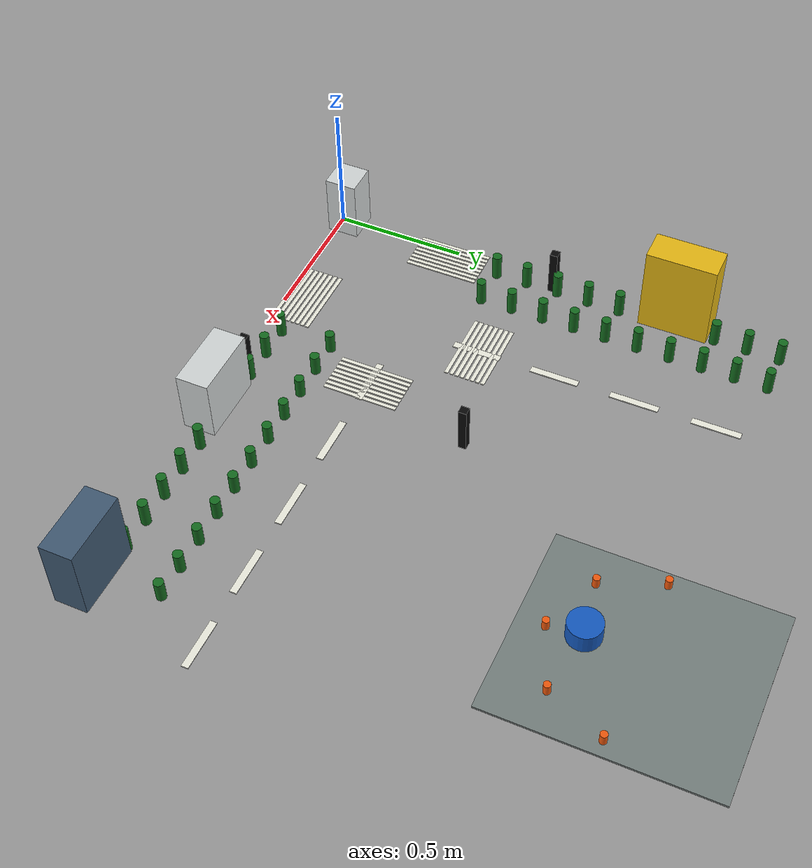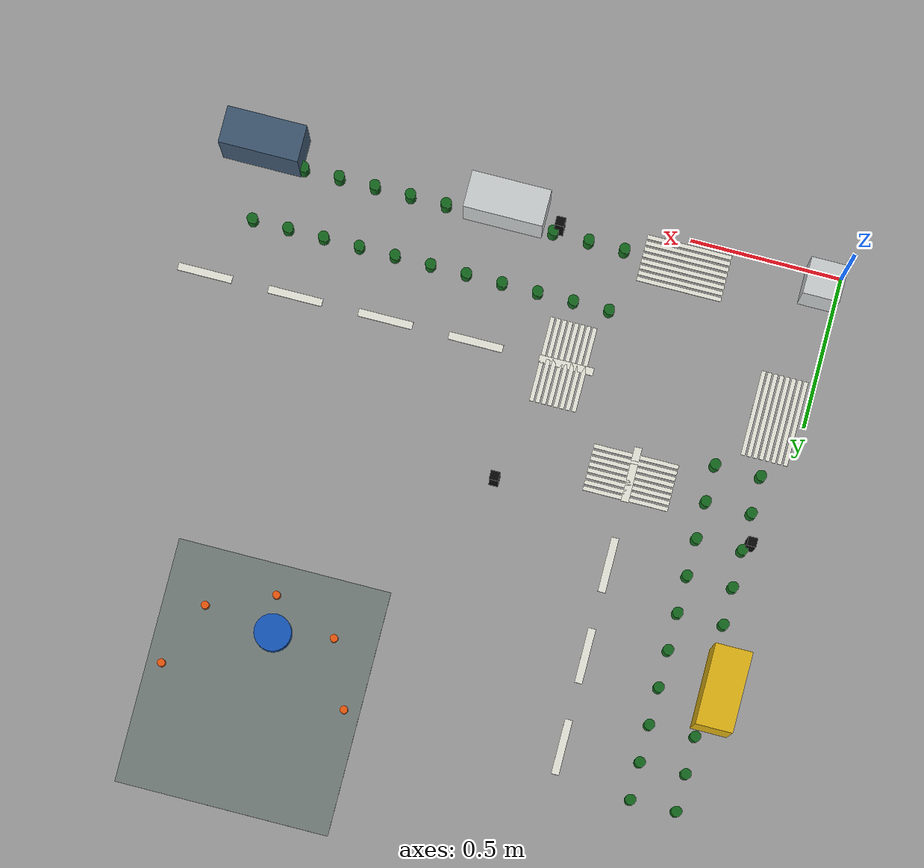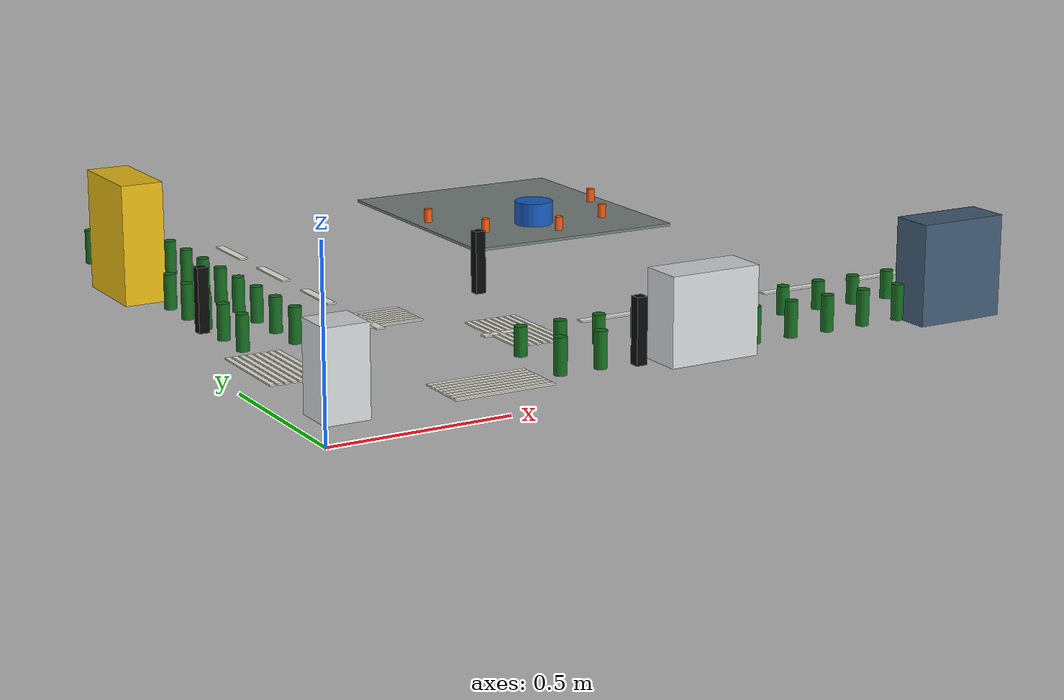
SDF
<sdf version="1.7">
 <world name="nexus_sandbox_imx219">
  <model name="LM-RING-W-01">
   <static>true</static>
   <pose>0.5 0.79 0.05450000000000001 0 0 0</pose>
   <link name="link">
    <collision name="collision"><geometry><box><size>0.025 0.18 0.004</size></box></geometry></collision>
    <visual name="visual">
     <geometry><box><size>0.025 0.18 0.004</size></box></geometry>
     <material><ambient>0.93 0.93 0.88 1</ambient><diffuse>0.93 0.93 0.88 1</diffuse></material>
    </visual>
   </link>
  </model>
  <model name="LM-RING-W-02">
   <static>true</static>
   <pose>0.5 1.09 0.05450000000000001 0 0 0</pose>
   <link name="link">
    <collision name="collision"><geometry><box><size>0.025 0.18 0.004</size></box></geometry></collision>
    <visual name="visual">
     <geometry><box><size>0.025 0.18 0.004</size></box></geometry>
     <material><ambient>0.93 0.93 0.88 1</ambient><diffuse>0.93 0.93 0.88 1</diffuse></material>
    </visual>
   </link>
  </model>
  <model name="LM-RING-W-03">
   <static>true</static>
   <pose>0.5 1.3900000000000001 0.05450000000000001 0 0 0</pose>
   <link name="link">
    <collision name="collision"><geometry><box><size>0.025 0.18 0.004</size></box></geometry></collision>
    <visual name="visual">
     <geometry><box><size>0.025 0.18 0.004</size></box></geometry>
     <material><ambient>0.93 0.93 0.88 1</ambient><diffuse>0.93 0.93 0.88 1</diffuse></material>
    </visual>
   </link>
  </model>
  <model name="LM-RING-W-04">
   <static>true</static>
   <pose>0.5 1.69 0.05450000000000001 0 0 0</pose>
   <link name="link">
    <collision name="collision"><geometry><box><size>0.025 0.18 0.004</size></box></geometry></collision>
    <visual name="visual">
     <geometry><box><size>0.025 0.18 0.004</size></box></geometry>
     <material><ambient>0.93 0.93 0.88 1</ambient><diffuse>0.93 0.93 0.88 1</diffuse></material>
    </visual>
   </link>
  </model>
  <model name="LM-RING-S-01">
   <static>true</static>
   <pose>0.79 0.5 0.05450000000000001 0 0 0</pose>
   <link name="link">
    <collision name="collision"><geometry><box><size>0.18 0.025 0.004</size></box></geometry></collision>
    <visual name="visual">
     <geometry><box><size>0.18 0.025 0.004</size></box></geometry>
     <material><ambient>0.93 0.93 0.88 1</ambient><diffuse>0.93 0.93 0.88 1</diffuse></material>
    </visual>
   </link>
  </model>
  <model name="LM-RING-S-02">
   <static>true</static>
   <pose>1.09 0.5 0.05450000000000001 0 0 0</pose>
   <link name="link">
    <collision name="collision"><geometry><box><size>0.18 0.025 0.004</size></box></geometry></collision>
    <visual name="visual">
     <geometry><box><size>0.18 0.025 0.004</size></box></geometry>
     <material><ambient>0.93 0.93 0.88 1</ambient><diffuse>0.93 0.93 0.88 1</diffuse></material>
    </visual>
   </link>
  </model>
  <model name="LM-RING-S-03">
   <static>true</static>
   <pose>1.3900000000000001 0.5 0.05450000000000001 0 0 0</pose>
   <link name="link">
    <collision name="collision"><geometry><box><size>0.18 0.025 0.004</size></box></geometry></collision>
    <visual name="visual">
     <geometry><box><size>0.18 0.025 0.004</size></box></geometry>
     <material><ambient>0.93 0.93 0.88 1</ambient><diffuse>0.93 0.93 0.88 1</diffuse></material>
    </visual>
   </link>
  </model>
  <model name="LM-RING-S-04">
   <static>true</static>
   <pose>1.69 0.5 0.05450000000000001 0 0 0</pose>
   <link name="link">
    <collision name="collision"><geometry><box><size>0.18 0.025 0.004</size></box></geometry></collision>
    <visual name="visual">
     <geometry><box><size>0.18 0.025 0.004</size></box></geometry>
     <material><ambient>0.93 0.93 0.88 1</ambient><diffuse>0.93 0.93 0.88 1</diffuse></material>
    </visual>
   </link>
  </model>
  <model name="LM-RING-S-05">
   <static>true</static>
   <pose>1.9900000000000002 0.5 0.05450000000000001 0 0 0</pose>
   <link name="link">
    <collision name="collision"><geometry><box><size>0.18 0.025 0.004</size></box></geometry></collision>
    <visual name="visual">
     <geometry><box><size>0.18 0.025 0.004</size></box></geometry>
     <material><ambient>0.93 0.93 0.88 1</ambient><diffuse>0.93 0.93 0.88 1</diffuse></material>
    </visual>
   </link>
  </model>
  <model name="CW-SW-X-01">
   <static>true</static>
   <pose>0.5 0.73 0.05450000000000001 0 0 0</pose>
   <link name="link">
    <collision name="collision"><geometry><box><size>0.28 0.014 0.004</size></box></geometry></collision>
    <visual name="visual">
     <geometry><box><size>0.28 0.014 0.004</size></box></geometry>
     <material><ambient>0.93 0.93 0.88 1</ambient><diffuse>0.93 0.93 0.88 1</diffuse></material>
    </visual>
   </link>
  </model>
  <model name="CW-SW-X-02">
   <static>true</static>
   <pose>0.5 0.75 0.05450000000000001 0 0 0</pose>
   <link name="link">
    <collision name="collision"><geometry><box><size>0.28 0.014 0.004</size></box></geometry></collision>
    <visual name="visual">
     <geometry><box><size>0.28 0.014 0.004</size></box></geometry>
     <material><ambient>0.93 0.93 0.88 1</ambient><diffuse>0.93 0.93 0.88 1</diffuse></material>
    </visual>
   </link>
  </model>
  <model name="CW-SW-X-03">
   <static>true</static>
   <pose>0.5 0.77 0.05450000000000001 0 0 0</pose>
   <link name="link">
    <collision name="collision"><geometry><box><size>0.28 0.014 0.004</size></box></geometry></collision>
    <visual name="visual">
     <geometry><box><size>0.28 0.014 0.004</size></box></geometry>
     <material><ambient>0.93 0.93 0.88 1</ambient><diffuse>0.93 0.93 0.88 1</diffuse></material>
    </visual>
   </link>
  </model>
  <model name="CW-SW-X-04">
   <static>true</static>
   <pose>0.5 0.79 0.05450000000000001 0 0 0</pose>
   <link name="link">
    <collision name="collision"><geometry><box><size>0.28 0.014 0.004</size></box></geometry></collision>
    <visual name="visual">
     <geometry><box><size>0.28 0.014 0.004</size></box></geometry>
     <material><ambient>0.93 0.93 0.88 1</ambient><diffuse>0.93 0.93 0.88 1</diffuse></material>
    </visual>
   </link>
  </model>
  <model name="CW-SW-X-05">
   <static>true</static>
   <pose>0.5 0.81 0.05450000000000001 0 0 0</pose>
   <link name="link">
    <collision name="collision"><geometry><box><size>0.28 0.014 0.004</size></box></geometry></collision>
    <visual name="visual">
     <geometry><box><size>0.28 0.014 0.004</size></box></geometry>
     <material><ambient>0.93 0.93 0.88 1</ambient><diffuse>0.93 0.93 0.88 1</diffuse></material>
    </visual>
   </link>
  </model>
  <model name="CW-SW-X-06">
   <static>true</static>
   <pose>0.5 0.8300000000000001 0.05450000000000001 0 0 0</pose>
   <link name="link">
    <collision name="collision"><geometry><box><size>0.28 0.014 0.004</size></box></geometry></collision>
    <visual name="visual">
     <geometry><box><size>0.28 0.014 0.004</size></box></geometry>
     <material><ambient>0.93 0.93 0.88 1</ambient><diffuse>0.93 0.93 0.88 1</diffuse></material>
    </visual>
   </link>
  </model>
  <model name="CW-SW-X-07">
   <static>true</static>
   <pose>0.5 0.8500000000000001 0.05450000000000001 0 0 0</pose>
   <link name="link">
    <collision name="collision"><geometry><box><size>0.28 0.014 0.004</size></box></geometry></collision>
    <visual name="visual">
     <geometry><box><size>0.28 0.014 0.004</size></box></geometry>
     <material><ambient>0.93 0.93 0.88 1</ambient><diffuse>0.93 0.93 0.88 1</diffuse></material>
    </visual>
   </link>
  </model>
  <model name="CW-SW-X-08">
   <static>true</static>
   <pose>0.5 0.8700000000000001 0.05450000000000001 0 0 0</pose>
   <link name="link">
    <collision name="collision"><geometry><box><size>0.28 0.014 0.004</size></box></geometry></collision>
    <visual name="visual">
     <geometry><box><size>0.28 0.014 0.004</size></box></geometry>
     <material><ambient>0.93 0.93 0.88 1</ambient><diffuse>0.93 0.93 0.88 1</diffuse></material>
    </visual>
   </link>
  </model>
  <model name="CW-SW-Y-01">
   <static>true</static>
   <pose>0.73 0.5 0.05450000000000001 0 0 0</pose>
   <link name="link">
    <collision name="collision"><geometry><box><size>0.014 0.28 0.004</size></box></geometry></collision>
    <visual name="visual">
     <geometry><box><size>0.014 0.28 0.004</size></box></geometry>
     <material><ambient>0.93 0.93 0.88 1</ambient><diffuse>0.93 0.93 0.88 1</diffuse></material>
    </visual>
   </link>
  </model>
  <model name="CW-SW-Y-02">
   <static>true</static>
   <pose>0.75 0.5 0.05450000000000001 0 0 0</pose>
   <link name="link">
    <collision name="collision"><geometry><box><size>0.014 0.28 0.004</size></box></geometry></collision>
    <visual name="visual">
     <geometry><box><size>0.014 0.28 0.004</size></box></geometry>
     <material><ambient>0.93 0.93 0.88 1</ambient><diffuse>0.93 0.93 0.88 1</diffuse></material>
    </visual>
   </link>
  </model>
  <model name="CW-SW-Y-03">
   <static>true</static>
   <pose>0.77 0.5 0.05450000000000001 0 0 0</pose>
   <link name="link">
    <collision name="collision"><geometry><box><size>0.014 0.28 0.004</size></box></geometry></collision>
    <visual name="visual">
     <geometry><box><size>0.014 0.28 0.004</size></box></geometry>
     <material><ambient>0.93 0.93 0.88 1</ambient><diffuse>0.93 0.93 0.88 1</diffuse></material>
    </visual>
   </link>
  </model>
  <model name="CW-SW-Y-04">
   <static>true</static>
   <pose>0.79 0.5 0.05450000000000001 0 0 0</pose>
   <link name="link">
    <collision name="collision"><geometry><box><size>0.014 0.28 0.004</size></box></geometry></collision>
    <visual name="visual">
     <geometry><box><size>0.014 0.28 0.004</size></box></geometry>
     <material><ambient>0.93 0.93 0.88 1</ambient><diffuse>0.93 0.93 0.88 1</diffuse></material>
    </visual>
   </link>
  </model>
  <model name="CW-SW-Y-05">
   <static>true</static>
   <pose>0.81 0.5 0.05450000000000001 0 0 0</pose>
   <link name="link">
    <collision name="collision"><geometry><box><size>0.014 0.28 0.004</size></box></geometry></collision>
    <visual name="visual">
     <geometry><box><size>0.014 0.28 0.004</size></box></geometry>
     <material><ambient>0.93 0.93 0.88 1</ambient><diffuse>0.93 0.93 0.88 1</diffuse></material>
    </visual>
   </link>
  </model>
  <model name="CW-SW-Y-06">
   <static>true</static>
   <pose>0.8300000000000001 0.5 0.05450000000000001 0 0 0</pose>
   <link name="link">
    <collision name="collision"><geometry><box><size>0.014 0.28 0.004</size></box></geometry></collision>
    <visual name="visual">
     <geometry><box><size>0.014 0.28 0.004</size></box></geometry>
     <material><ambient>0.93 0.93 0.88 1</ambient><diffuse>0.93 0.93 0.88 1</diffuse></material>
    </visual>
   </link>
  </model>
  <model name="CW-SW-Y-07">
   <static>true</static>
   <pose>0.8500000000000001 0.5 0.05450000000000001 0 0 0</pose>
   <link name="link">
    <collision name="collision"><geometry><box><size>0.014 0.28 0.004</size></box></geometry></collision>
    <visual name="visual">
     <geometry><box><size>0.014 0.28 0.004</size></box></geometry>
     <material><ambient>0.93 0.93 0.88 1</ambient><diffuse>0.93 0.93 0.88 1</diffuse></material>
    </visual>
   </link>
  </model>
  <model name="CW-SW-Y-08">
   <static>true</static>
   <pose>0.8700000000000001 0.5 0.05450000000000001 0 0 0</pose>
   <link name="link">
    <collision name="collision"><geometry><box><size>0.014 0.28 0.004</size></box></geometry></collision>
    <visual name="visual">
     <geometry><box><size>0.014 0.28 0.004</size></box></geometry>
     <material><ambient>0.93 0.93 0.88 1</ambient><diffuse>0.93 0.93 0.88 1</diffuse></material>
    </visual>
   </link>
  </model>
  <model name="CW-EXT-W-S-01">
   <static>true</static>
   <pose>0.5 0.03 0.05450000000000001 0 0 0</pose>
   <link name="link">
    <collision name="collision"><geometry><box><size>0.28 0.014 0.004</size></box></geometry></collision>
    <visual name="visual">
     <geometry><box><size>0.28 0.014 0.004</size></box></geometry>
     <material><ambient>0.93 0.93 0.88 1</ambient><diffuse>0.93 0.93 0.88 1</diffuse></material>
    </visual>
   </link>
  </model>
  <model name="CW-EXT-W-S-02">
   <static>true</static>
   <pose>0.5 0.05 0.05450000000000001 0 0 0</pose>
   <link name="link">
    <collision name="collision"><geometry><box><size>0.28 0.014 0.004</size></box></geometry></collision>
    <visual name="visual">
     <geometry><box><size>0.28 0.014 0.004</size></box></geometry>
     <material><ambient>0.93 0.93 0.88 1</ambient><diffuse>0.93 0.93 0.88 1</diffuse></material>
    </visual>
   </link>
  </model>
  <model name="CW-EXT-W-S-03">
   <static>true</static>
   <pose>0.5 0.07 0.05450000000000001 0 0 0</pose>
   <link name="link">
    <collision name="collision"><geometry><box><size>0.28 0.014 0.004</size></box></geometry></collision>
    <visual name="visual">
     <geometry><box><size>0.28 0.014 0.004</size></box></geometry>
     <material><ambient>0.93 0.93 0.88 1</ambient><diffuse>0.93 0.93 0.88 1</diffuse></material>
    </visual>
   </link>
  </model>
  <model name="CW-EXT-W-S-04">
   <static>true</static>
   <pose>0.5 0.09000000000000001 0.05450000000000001 0 0 0</pose>
   <link name="link">
    <collision name="collision"><geometry><box><size>0.28 0.014 0.004</size></box></geometry></collision>
    <visual name="visual">
     <geometry><box><size>0.28 0.014 0.004</size></box></geometry>
     <material><ambient>0.93 0.93 0.88 1</ambient><diffuse>0.93 0.93 0.88 1</diffuse></material>
    </visual>
   </link>
  </model>
  <model name="CW-EXT-W-S-05">
   <static>true</static>
   <pose>0.5 0.11 0.05450000000000001 0 0 0</pose>
   <link name="link">
    <collision name="collision"><geometry><box><size>0.28 0.014 0.004</size></box></geometry></collision>
    <visual name="visual">
     <geometry><box><size>0.28 0.014 0.004</size></box></geometry>
     <material><ambient>0.93 0.93 0.88 1</ambient><diffuse>0.93 0.93 0.88 1</diffuse></material>
    </visual>
   </link>
  </model>
  <model name="CW-EXT-W-S-06">
   <static>true</static>
   <pose>0.5 0.13 0.05450000000000001 0 0 0</pose>
   <link name="link">
    <collision name="collision"><geometry><box><size>0.28 0.014 0.004</size></box></geometry></collision>
    <visual name="visual">
     <geometry><box><size>0.28 0.014 0.004</size></box></geometry>
     <material><ambient>0.93 0.93 0.88 1</ambient><diffuse>0.93 0.93 0.88 1</diffuse></material>
    </visual>
   </link>
  </model>
  <model name="CW-EXT-W-S-07">
   <static>true</static>
   <pose>0.5 0.15000000000000002 0.05450000000000001 0 0 0</pose>
   <link name="link">
    <collision name="collision"><geometry><box><size>0.28 0.014 0.004</size></box></geometry></collision>
    <visual name="visual">
     <geometry><box><size>0.28 0.014 0.004</size></box></geometry>
     <material><ambient>0.93 0.93 0.88 1</ambient><diffuse>0.93 0.93 0.88 1</diffuse></material>
    </visual>
   </link>
  </model>
  <model name="CW-EXT-W-S-08">
   <static>true</static>
   <pose>0.5 0.17 0.05450000000000001 0 0 0</pose>
   <link name="link">
    <collision name="collision"><geometry><box><size>0.28 0.014 0.004</size></box></geometry></collision>
    <visual name="visual">
     <geometry><box><size>0.28 0.014 0.004</size></box></geometry>
     <material><ambient>0.93 0.93 0.88 1</ambient><diffuse>0.93 0.93 0.88 1</diffuse></material>
    </visual>
   </link>
  </model>
  <model name="CW-EXT-S-W-01">
   <static>true</static>
   <pose>0.03 0.5 0.05450000000000001 0 0 0</pose>
   <link name="link">
    <collision name="collision"><geometry><box><size>0.014 0.28 0.004</size></box></geometry></collision>
    <visual name="visual">
     <geometry><box><size>0.014 0.28 0.004</size></box></geometry>
     <material><ambient>0.93 0.93 0.88 1</ambient><diffuse>0.93 0.93 0.88 1</diffuse></material>
    </visual>
   </link>
  </model>
  <model name="CW-EXT-S-W-02">
   <static>true</static>
   <pose>0.05 0.5 0.05450000000000001 0 0 0</pose>
   <link name="link">
    <collision name="collision"><geometry><box><size>0.014 0.28 0.004</size></box></geometry></collision>
    <visual name="visual">
     <geometry><box><size>0.014 0.28 0.004</size></box></geometry>
     <material><ambient>0.93 0.93 0.88 1</ambient><diffuse>0.93 0.93 0.88 1</diffuse></material>
    </visual>
   </link>
  </model>
  <model name="CW-EXT-S-W-03">
   <static>true</static>
   <pose>0.07 0.5 0.05450000000000001 0 0 0</pose>
   <link name="link">
    <collision name="collision"><geometry><box><size>0.014 0.28 0.004</size></box></geometry></collision>
    <visual name="visual">
     <geometry><box><size>0.014 0.28 0.004</size></box></geometry>
     <material><ambient>0.93 0.93 0.88 1</ambient><diffuse>0.93 0.93 0.88 1</diffuse></material>
    </visual>
   </link>
  </model>
  <model name="CW-EXT-S-W-04">
   <static>true</static>
   <pose>0.09000000000000001 0.5 0.05450000000000001 0 0 0</pose>
   <link name="link">
    <collision name="collision"><geometry><box><size>0.014 0.28 0.004</size></box></geometry></collision>
    <visual name="visual">
     <geometry><box><size>0.014 0.28 0.004</size></box></geometry>
     <material><ambient>0.93 0.93 0.88 1</ambient><diffuse>0.93 0.93 0.88 1</diffuse></material>
    </visual>
   </link>
  </model>
  <model name="CW-EXT-S-W-05">
   <static>true</static>
   <pose>0.11 0.5 0.05450000000000001 0 0 0</pose>
   <link name="link">
    <collision name="collision"><geometry><box><size>0.014 0.28 0.004</size></box></geometry></collision>
    <visual name="visual">
     <geometry><box><size>0.014 0.28 0.004</size></box></geometry>
     <material><ambient>0.93 0.93 0.88 1</ambient><diffuse>0.93 0.93 0.88 1</diffuse></material>
    </visual>
   </link>
  </model>
  <model name="CW-EXT-S-W-06">
   <static>true</static>
   <pose>0.13 0.5 0.05450000000000001 0 0 0</pose>
   <link name="link">
    <collision name="collision"><geometry><box><size>0.014 0.28 0.004</size></box></geometry></collision>
    <visual name="visual">
     <geometry><box><size>0.014 0.28 0.004</size></box></geometry>
     <material><ambient>0.93 0.93 0.88 1</ambient><diffuse>0.93 0.93 0.88 1</diffuse></material>
    </visual>
   </link>
  </model>
  <model name="CW-EXT-S-W-07">
   <static>true</static>
   <pose>0.15000000000000002 0.5 0.05450000000000001 0 0 0</pose>
   <link name="link">
    <collision name="collision"><geometry><box><size>0.014 0.28 0.004</size></box></geometry></collision>
    <visual name="visual">
     <geometry><box><size>0.014 0.28 0.004</size></box></geometry>
     <material><ambient>0.93 0.93 0.88 1</ambient><diffuse>0.93 0.93 0.88 1</diffuse></material>
    </visual>
   </link>
  </model>
  <model name="CW-EXT-S-W-08">
   <static>true</static>
   <pose>0.17 0.5 0.05450000000000001 0 0 0</pose>
   <link name="link">
    <collision name="collision"><geometry><box><size>0.014 0.28 0.004</size></box></geometry></collision>
    <visual name="visual">
     <geometry><box><size>0.014 0.28 0.004</size></box></geometry>
     <material><ambient>0.93 0.93 0.88 1</ambient><diffuse>0.93 0.93 0.88 1</diffuse></material>
    </visual>
   </link>
  </model>
  <model name="IND-SW-PAD">
   <static>true</static>
   <pose>1.5 1.75 0.054000000000000006 0 0 0</pose>
   <link name="link">
    <collision name="collision">
     <geometry><box><size>0.7000000000000001 0.8 0.008</size></box></geometry>
    </collision>
    <visual name="visual">
     <geometry><box><size>0.7000000000000001 0.8 0.008</size></box></geometry>
     <material><ambient>0.46 0.5 0.49 1</ambient><diffuse>0.46 0.5 0.49 1</diffuse></material>
    </visual>
   </link>
  </model>
  <model name="SW-T03">
   <static>true</static>
   <pose>1.48 1.57 0.09 0 0 0</pose>
   <link name="link">
    <collision name="collision">
     <geometry><cylinder><radius>0.06</radius><length>0.08</length></cylinder></geometry>
    </collision>
    <visual name="visual">
     <geometry><cylinder><radius>0.06</radius><length>0.08</length></cylinder></geometry>
     <material><ambient>0.08 0.35 0.75 1</ambient><diffuse>0.08 0.35 0.75 1</diffuse></material>
    </visual>
   </link>
  </model>
  <model name="BLD-L01">
   <static>true</static>
   <pose>0.06 1.4000000000000001 0.22000000000000003 0 0 0</pose>
   <link name="link">
    <collision name="collision"><geometry><box><size>0.12 0.26 0.34</size></box></geometry></collision>
    <visual name="visual">
     <geometry><box><size>0.12 0.26 0.34</size></box></geometry>
     <material><ambient>0.9 0.72 0.08 1</ambient><diffuse>0.9 0.72 0.08 1</diffuse></material>
    </visual>
   </link>
  </model>
  <model name="BLD-B01">
   <static>true</static>
   <pose>0.06 0.06 0.16999999999999998 0 0 0</pose>
   <link name="link">
    <collision name="collision"><geometry><box><size>0.12 0.12 0.24</size></box></geometry></collision>
    <visual name="visual">
     <geometry><box><size>0.12 0.12 0.24</size></box></geometry>
     <material><ambient>0.82 0.84 0.84 1</ambient><diffuse>0.82 0.84 0.84 1</diffuse></material>
    </visual>
   </link>
  </model>
  <model name="BLD-B02">
   <static>true</static>
   <pose>1.1 0.06 0.16999999999999998 0 0 0</pose>
   <link name="link">
    <collision name="collision"><geometry><box><size>0.26 0.12 0.24</size></box></geometry></collision>
    <visual name="visual">
     <geometry><box><size>0.26 0.12 0.24</size></box></geometry>
     <material><ambient>0.82 0.84 0.84 1</ambient><diffuse>0.82 0.84 0.84 1</diffuse></material>
    </visual>
   </link>
  </model>
  <model name="BLD-B03">
   <static>true</static>
   <pose>1.9000000000000001 0.06 0.19 0 0 0</pose>
   <link name="link">
    <collision name="collision"><geometry><box><size>0.26 0.12 0.28</size></box></geometry></collision>
    <visual name="visual">
     <geometry><box><size>0.26 0.12 0.28</size></box></geometry>
     <material><ambient>0.25 0.35 0.45 1</ambient><diffuse>0.25 0.35 0.45 1</diffuse></material>
    </visual>
   </link>
  </model>
  <model name="TR-L01-01">
   <static>true</static>
   <pose>0.1 0.7000000000000001 0.1 0 0 0</pose>
   <link name="link">
    <collision name="collision">
     <geometry><cylinder><radius>0.0175</radius><length>0.1</length></cylinder></geometry>
    </collision>
    <visual name="visual">
     <geometry><cylinder><radius>0.0175</radius><length>0.1</length></cylinder></geometry>
     <material><ambient>0.08 0.42 0.12 1</ambient><diffuse>0.08 0.42 0.12 1</diffuse></material>
    </visual>
   </link>
  </model>
  <model name="TR-L01-02">
   <static>true</static>
   <pose>0.1 0.8222222222222223 0.1 0 0 0</pose>
   <link name="link">
    <collision name="collision">
     <geometry><cylinder><radius>0.0175</radius><length>0.1</length></cylinder></geometry>
    </collision>
    <visual name="visual">
     <geometry><cylinder><radius>0.0175</radius><length>0.1</length></cylinder></geometry>
     <material><ambient>0.08 0.42 0.12 1</ambient><diffuse>0.08 0.42 0.12 1</diffuse></material>
    </visual>
   </link>
  </model>
  <model name="TR-L01-03">
   <static>true</static>
   <pose>0.1 0.9444444444444444 0.1 0 0 0</pose>
   <link name="link">
    <collision name="collision">
     <geometry><cylinder><radius>0.0175</radius><length>0.1</length></cylinder></geometry>
    </collision>
    <visual name="visual">
     <geometry><cylinder><radius>0.0175</radius><length>0.1</length></cylinder></geometry>
     <material><ambient>0.08 0.42 0.12 1</ambient><diffuse>0.08 0.42 0.12 1</diffuse></material>
    </visual>
   </link>
  </model>
  <model name="TR-L01-04">
   <static>true</static>
   <pose>0.1 1.0666666666666667 0.1 0 0 0</pose>
   <link name="link">
    <collision name="collision">
     <geometry><cylinder><radius>0.0175</radius><length>0.1</length></cylinder></geometry>
    </collision>
    <visual name="visual">
     <geometry><cylinder><radius>0.0175</radius><length>0.1</length></cylinder></geometry>
     <material><ambient>0.08 0.42 0.12 1</ambient><diffuse>0.08 0.42 0.12 1</diffuse></material>
    </visual>
   </link>
  </model>
  <model name="TR-L01-05">
   <static>true</static>
   <pose>0.1 1.1888888888888889 0.1 0 0 0</pose>
   <link name="link">
    <collision name="collision">
     <geometry><cylinder><radius>0.0175</radius><length>0.1</length></cylinder></geometry>
    </collision>
    <visual name="visual">
     <geometry><cylinder><radius>0.0175</radius><length>0.1</length></cylinder></geometry>
     <material><ambient>0.08 0.42 0.12 1</ambient><diffuse>0.08 0.42 0.12 1</diffuse></material>
    </visual>
   </link>
  </model>
  <model name="TR-L01-06">
   <static>true</static>
   <pose>0.1 1.3111111111111111 0.1 0 0 0</pose>
   <link name="link">
    <collision name="collision">
     <geometry><cylinder><radius>0.0175</radius><length>0.1</length></cylinder></geometry>
    </collision>
    <visual name="visual">
     <geometry><cylinder><radius>0.0175</radius><length>0.1</length></cylinder></geometry>
     <material><ambient>0.08 0.42 0.12 1</ambient><diffuse>0.08 0.42 0.12 1</diffuse></material>
    </visual>
   </link>
  </model>
  <model name="TR-L01-07">
   <static>true</static>
   <pose>0.1 1.4333333333333333 0.1 0 0 0</pose>
   <link name="link">
    <collision name="collision">
     <geometry><cylinder><radius>0.0175</radius><length>0.1</length></cylinder></geometry>
    </collision>
    <visual name="visual">
     <geometry><cylinder><radius>0.0175</radius><length>0.1</length></cylinder></geometry>
     <material><ambient>0.08 0.42 0.12 1</ambient><diffuse>0.08 0.42 0.12 1</diffuse></material>
    </visual>
   </link>
  </model>
  <model name="TR-L01-08">
   <static>true</static>
   <pose>0.1 1.5555555555555556 0.1 0 0 0</pose>
   <link name="link">
    <collision name="collision">
     <geometry><cylinder><radius>0.0175</radius><length>0.1</length></cylinder></geometry>
    </collision>
    <visual name="visual">
     <geometry><cylinder><radius>0.0175</radius><length>0.1</length></cylinder></geometry>
     <material><ambient>0.08 0.42 0.12 1</ambient><diffuse>0.08 0.42 0.12 1</diffuse></material>
    </visual>
   </link>
  </model>
  <model name="TR-L01-09">
   <static>true</static>
   <pose>0.1 1.6777777777777776 0.1 0 0 0</pose>
   <link name="link">
    <collision name="collision">
     <geometry><cylinder><radius>0.0175</radius><length>0.1</length></cylinder></geometry>
    </collision>
    <visual name="visual">
     <geometry><cylinder><radius>0.0175</radius><length>0.1</length></cylinder></geometry>
     <material><ambient>0.08 0.42 0.12 1</ambient><diffuse>0.08 0.42 0.12 1</diffuse></material>
    </visual>
   </link>
  </model>
  <model name="TR-L01-10">
   <static>true</static>
   <pose>0.1 1.7999999999999998 0.1 0 0 0</pose>
   <link name="link">
    <collision name="collision">
     <geometry><cylinder><radius>0.0175</radius><length>0.1</length></cylinder></geometry>
    </collision>
    <visual name="visual">
     <geometry><cylinder><radius>0.0175</radius><length>0.1</length></cylinder></geometry>
     <material><ambient>0.08 0.42 0.12 1</ambient><diffuse>0.08 0.42 0.12 1</diffuse></material>
    </visual>
   </link>
  </model>
  <model name="TR-L02-01">
   <static>true</static>
   <pose>0.25 0.7000000000000001 0.1 0 0 0</pose>
   <link name="link">
    <collision name="collision">
     <geometry><cylinder><radius>0.0175</radius><length>0.1</length></cylinder></geometry>
    </collision>
    <visual name="visual">
     <geometry><cylinder><radius>0.0175</radius><length>0.1</length></cylinder></geometry>
     <material><ambient>0.08 0.42 0.12 1</ambient><diffuse>0.08 0.42 0.12 1</diffuse></material>
    </visual>
   </link>
  </model>
  <model name="TR-L02-02">
   <static>true</static>
   <pose>0.25 0.8222222222222223 0.1 0 0 0</pose>
   <link name="link">
    <collision name="collision">
     <geometry><cylinder><radius>0.0175</radius><length>0.1</length></cylinder></geometry>
    </collision>
    <visual name="visual">
     <geometry><cylinder><radius>0.0175</radius><length>0.1</length></cylinder></geometry>
     <material><ambient>0.08 0.42 0.12 1</ambient><diffuse>0.08 0.42 0.12 1</diffuse></material>
    </visual>
   </link>
  </model>
  <model name="TR-L02-03">
   <static>true</static>
   <pose>0.25 0.9444444444444444 0.1 0 0 0</pose>
   <link name="link">
    <collision name="collision">
     <geometry><cylinder><radius>0.0175</radius><length>0.1</length></cylinder></geometry>
    </collision>
    <visual name="visual">
     <geometry><cylinder><radius>0.0175</radius><length>0.1</length></cylinder></geometry>
     <material><ambient>0.08 0.42 0.12 1</ambient><diffuse>0.08 0.42 0.12 1</diffuse></material>
    </visual>
   </link>
  </model>
  <model name="TR-L02-04">
   <static>true</static>
   <pose>0.25 1.0666666666666667 0.1 0 0 0</pose>
   <link name="link">
    <collision name="collision">
     <geometry><cylinder><radius>0.0175</radius><length>0.1</length></cylinder></geometry>
    </collision>
    <visual name="visual">
     <geometry><cylinder><radius>0.0175</radius><length>0.1</length></cylinder></geometry>
     <material><ambient>0.08 0.42 0.12 1</ambient><diffuse>0.08 0.42 0.12 1</diffuse></material>
    </visual>
   </link>
  </model>
  <model name="TR-L02-05">
   <static>true</static>
   <pose>0.25 1.1888888888888889 0.1 0 0 0</pose>
   <link name="link">
    <collision name="collision">
     <geometry><cylinder><radius>0.0175</radius><length>0.1</length></cylinder></geometry>
    </collision>
    <visual name="visual">
     <geometry><cylinder><radius>0.0175</radius><length>0.1</length></cylinder></geometry>
     <material><ambient>0.08 0.42 0.12 1</ambient><diffuse>0.08 0.42 0.12 1</diffuse></material>
    </visual>
   </link>
  </model>
  <model name="TR-L02-06">
   <static>true</static>
   <pose>0.25 1.3111111111111111 0.1 0 0 0</pose>
   <link name="link">
    <collision name="collision">
     <geometry><cylinder><radius>0.0175</radius><length>0.1</length></cylinder></geometry>
    </collision>
    <visual name="visual">
     <geometry><cylinder><radius>0.0175</radius><length>0.1</length></cylinder></geometry>
     <material><ambient>0.08 0.42 0.12 1</ambient><diffuse>0.08 0.42 0.12 1</diffuse></material>
    </visual>
   </link>
  </model>
  <model name="TR-L02-07">
   <static>true</static>
   <pose>0.25 1.4333333333333333 0.1 0 0 0</pose>
   <link name="link">
    <collision name="collision">
     <geometry><cylinder><radius>0.0175</radius><length>0.1</length></cylinder></geometry>
    </collision>
    <visual name="visual">
     <geometry><cylinder><radius>0.0175</radius><length>0.1</length></cylinder></geometry>
     <material><ambient>0.08 0.42 0.12 1</ambient><diffuse>0.08 0.42 0.12 1</diffuse></material>
    </visual>
   </link>
  </model>
  <model name="TR-L02-08">
   <static>true</static>
   <pose>0.25 1.5555555555555556 0.1 0 0 0</pose>
   <link name="link">
    <collision name="collision">
     <geometry><cylinder><radius>0.0175</radius><length>0.1</length></cylinder></geometry>
    </collision>
    <visual name="visual">
     <geometry><cylinder><radius>0.0175</radius><length>0.1</length></cylinder></geometry>
     <material><ambient>0.08 0.42 0.12 1</ambient><diffuse>0.08 0.42 0.12 1</diffuse></material>
    </visual>
   </link>
  </model>
  <model name="TR-L02-09">
   <static>true</static>
   <pose>0.25 1.6777777777777776 0.1 0 0 0</pose>
   <link name="link">
    <collision name="collision">
     <geometry><cylinder><radius>0.0175</radius><length>0.1</length></cylinder></geometry>
    </collision>
    <visual name="visual">
     <geometry><cylinder><radius>0.0175</radius><length>0.1</length></cylinder></geometry>
     <material><ambient>0.08 0.42 0.12 1</ambient><diffuse>0.08 0.42 0.12 1</diffuse></material>
    </visual>
   </link>
  </model>
  <model name="TR-L02-10">
   <static>true</static>
   <pose>0.25 1.7999999999999998 0.1 0 0 0</pose>
   <link name="link">
    <collision name="collision">
     <geometry><cylinder><radius>0.0175</radius><length>0.1</length></cylinder></geometry>
    </collision>
    <visual name="visual">
     <geometry><cylinder><radius>0.0175</radius><length>0.1</length></cylinder></geometry>
     <material><ambient>0.08 0.42 0.12 1</ambient><diffuse>0.08 0.42 0.12 1</diffuse></material>
    </visual>
   </link>
  </model>
  <model name="TR-F01-01">
   <static>true</static>
   <pose>0.7000000000000001 0.1 0.1 0 0 0</pose>
   <link name="link">
    <collision name="collision">
     <geometry><cylinder><radius>0.0175</radius><length>0.1</length></cylinder></geometry>
    </collision>
    <visual name="visual">
     <geometry><cylinder><radius>0.0175</radius><length>0.1</length></cylinder></geometry>
     <material><ambient>0.08 0.42 0.12 1</ambient><diffuse>0.08 0.42 0.12 1</diffuse></material>
    </visual>
   </link>
  </model>
  <model name="TR-F01-02">
   <static>true</static>
   <pose>0.8181818181818182 0.1 0.1 0 0 0</pose>
   <link name="link">
    <collision name="collision">
     <geometry><cylinder><radius>0.0175</radius><length>0.1</length></cylinder></geometry>
    </collision>
    <visual name="visual">
     <geometry><cylinder><radius>0.0175</radius><length>0.1</length></cylinder></geometry>
     <material><ambient>0.08 0.42 0.12 1</ambient><diffuse>0.08 0.42 0.12 1</diffuse></material>
    </visual>
   </link>
  </model>
  <model name="TR-F01-03">
   <static>true</static>
   <pose>0.9363636363636365 0.1 0.1 0 0 0</pose>
   <link name="link">
    <collision name="collision">
     <geometry><cylinder><radius>0.0175</radius><length>0.1</length></cylinder></geometry>
    </collision>
    <visual name="visual">
     <geometry><cylinder><radius>0.0175</radius><length>0.1</length></cylinder></geometry>
     <material><ambient>0.08 0.42 0.12 1</ambient><diffuse>0.08 0.42 0.12 1</diffuse></material>
    </visual>
   </link>
  </model>
  <model name="TR-F01-04">
   <static>true</static>
   <pose>1.0545454545454547 0.1 0.1 0 0 0</pose>
   <link name="link">
    <collision name="collision">
     <geometry><cylinder><radius>0.0175</radius><length>0.1</length></cylinder></geometry>
    </collision>
    <visual name="visual">
     <geometry><cylinder><radius>0.0175</radius><length>0.1</length></cylinder></geometry>
     <material><ambient>0.08 0.42 0.12 1</ambient><diffuse>0.08 0.42 0.12 1</diffuse></material>
    </visual>
   </link>
  </model>
  <model name="TR-F01-05">
   <static>true</static>
   <pose>1.1727272727272728 0.1 0.1 0 0 0</pose>
   <link name="link">
    <collision name="collision">
     <geometry><cylinder><radius>0.0175</radius><length>0.1</length></cylinder></geometry>
    </collision>
    <visual name="visual">
     <geometry><cylinder><radius>0.0175</radius><length>0.1</length></cylinder></geometry>
     <material><ambient>0.08 0.42 0.12 1</ambient><diffuse>0.08 0.42 0.12 1</diffuse></material>
    </visual>
   </link>
  </model>
  <model name="TR-F01-06">
   <static>true</static>
   <pose>1.290909090909091 0.1 0.1 0 0 0</pose>
   <link name="link">
    <collision name="collision">
     <geometry><cylinder><radius>0.0175</radius><length>0.1</length></cylinder></geometry>
    </collision>
    <visual name="visual">
     <geometry><cylinder><radius>0.0175</radius><length>0.1</length></cylinder></geometry>
     <material><ambient>0.08 0.42 0.12 1</ambient><diffuse>0.08 0.42 0.12 1</diffuse></material>
    </visual>
   </link>
  </model>
  <model name="TR-F01-07">
   <static>true</static>
   <pose>1.4090909090909092 0.1 0.1 0 0 0</pose>
   <link name="link">
    <collision name="collision">
     <geometry><cylinder><radius>0.0175</radius><length>0.1</length></cylinder></geometry>
    </collision>
    <visual name="visual">
     <geometry><cylinder><radius>0.0175</radius><length>0.1</length></cylinder></geometry>
     <material><ambient>0.08 0.42 0.12 1</ambient><diffuse>0.08 0.42 0.12 1</diffuse></material>
    </visual>
   </link>
  </model>
  <model name="TR-F01-08">
   <static>true</static>
   <pose>1.5272727272727273 0.1 0.1 0 0 0</pose>
   <link name="link">
    <collision name="collision">
     <geometry><cylinder><radius>0.0175</radius><length>0.1</length></cylinder></geometry>
    </collision>
    <visual name="visual">
     <geometry><cylinder><radius>0.0175</radius><length>0.1</length></cylinder></geometry>
     <material><ambient>0.08 0.42 0.12 1</ambient><diffuse>0.08 0.42 0.12 1</diffuse></material>
    </visual>
   </link>
  </model>
  <model name="TR-F01-09">
   <static>true</static>
   <pose>1.6454545454545455 0.1 0.1 0 0 0</pose>
   <link name="link">
    <collision name="collision">
     <geometry><cylinder><radius>0.0175</radius><length>0.1</length></cylinder></geometry>
    </collision>
    <visual name="visual">
     <geometry><cylinder><radius>0.0175</radius><length>0.1</length></cylinder></geometry>
     <material><ambient>0.08 0.42 0.12 1</ambient><diffuse>0.08 0.42 0.12 1</diffuse></material>
    </visual>
   </link>
  </model>
  <model name="TR-F01-10">
   <static>true</static>
   <pose>1.7636363636363637 0.1 0.1 0 0 0</pose>
   <link name="link">
    <collision name="collision">
     <geometry><cylinder><radius>0.0175</radius><length>0.1</length></cylinder></geometry>
    </collision>
    <visual name="visual">
     <geometry><cylinder><radius>0.0175</radius><length>0.1</length></cylinder></geometry>
     <material><ambient>0.08 0.42 0.12 1</ambient><diffuse>0.08 0.42 0.12 1</diffuse></material>
    </visual>
   </link>
  </model>
  <model name="TR-F01-11">
   <static>true</static>
   <pose>1.8818181818181818 0.1 0.1 0 0 0</pose>
   <link name="link">
    <collision name="collision">
     <geometry><cylinder><radius>0.0175</radius><length>0.1</length></cylinder></geometry>
    </collision>
    <visual name="visual">
     <geometry><cylinder><radius>0.0175</radius><length>0.1</length></cylinder></geometry>
     <material><ambient>0.08 0.42 0.12 1</ambient><diffuse>0.08 0.42 0.12 1</diffuse></material>
    </visual>
   </link>
  </model>
  <model name="TR-F02-01">
   <static>true</static>
   <pose>0.7000000000000001 0.3 0.09 0 0 0</pose>
   <link name="link">
    <collision name="collision">
     <geometry><cylinder><radius>0.0175</radius><length>0.08</length></cylinder></geometry>
    </collision>
    <visual name="visual">
     <geometry><cylinder><radius>0.0175</radius><length>0.08</length></cylinder></geometry>
     <material><ambient>0.08 0.42 0.12 1</ambient><diffuse>0.08 0.42 0.12 1</diffuse></material>
    </visual>
   </link>
  </model>
  <model name="TR-F02-02">
   <static>true</static>
   <pose>0.8181818181818182 0.3 0.09 0 0 0</pose>
   <link name="link">
    <collision name="collision">
     <geometry><cylinder><radius>0.0175</radius><length>0.08</length></cylinder></geometry>
    </collision>
    <visual name="visual">
     <geometry><cylinder><radius>0.0175</radius><length>0.08</length></cylinder></geometry>
     <material><ambient>0.08 0.42 0.12 1</ambient><diffuse>0.08 0.42 0.12 1</diffuse></material>
    </visual>
   </link>
  </model>
  <model name="TR-F02-03">
   <static>true</static>
   <pose>0.9363636363636365 0.3 0.09 0 0 0</pose>
   <link name="link">
    <collision name="collision">
     <geometry><cylinder><radius>0.0175</radius><length>0.08</length></cylinder></geometry>
    </collision>
    <visual name="visual">
     <geometry><cylinder><radius>0.0175</radius><length>0.08</length></cylinder></geometry>
     <material><ambient>0.08 0.42 0.12 1</ambient><diffuse>0.08 0.42 0.12 1</diffuse></material>
    </visual>
   </link>
  </model>
  <model name="TR-F02-04">
   <static>true</static>
   <pose>1.0545454545454547 0.3 0.09 0 0 0</pose>
   <link name="link">
    <collision name="collision">
     <geometry><cylinder><radius>0.0175</radius><length>0.08</length></cylinder></geometry>
    </collision>
    <visual name="visual">
     <geometry><cylinder><radius>0.0175</radius><length>0.08</length></cylinder></geometry>
     <material><ambient>0.08 0.42 0.12 1</ambient><diffuse>0.08 0.42 0.12 1</diffuse></material>
    </visual>
   </link>
  </model>
  <model name="TR-F02-05">
   <static>true</static>
   <pose>1.1727272727272728 0.3 0.09 0 0 0</pose>
   <link name="link">
    <collision name="collision">
     <geometry><cylinder><radius>0.0175</radius><length>0.08</length></cylinder></geometry>
    </collision>
    <visual name="visual">
     <geometry><cylinder><radius>0.0175</radius><length>0.08</length></cylinder></geometry>
     <material><ambient>0.08 0.42 0.12 1</ambient><diffuse>0.08 0.42 0.12 1</diffuse></material>
    </visual>
   </link>
  </model>
  <model name="TR-F02-06">
   <static>true</static>
   <pose>1.290909090909091 0.3 0.09 0 0 0</pose>
   <link name="link">
    <collision name="collision">
     <geometry><cylinder><radius>0.0175</radius><length>0.08</length></cylinder></geometry>
    </collision>
    <visual name="visual">
     <geometry><cylinder><radius>0.0175</radius><length>0.08</length></cylinder></geometry>
     <material><ambient>0.08 0.42 0.12 1</ambient><diffuse>0.08 0.42 0.12 1</diffuse></material>
    </visual>
   </link>
  </model>
  <model name="TR-F02-07">
   <static>true</static>
   <pose>1.4090909090909092 0.3 0.09 0 0 0</pose>
   <link name="link">
    <collision name="collision">
     <geometry><cylinder><radius>0.0175</radius><length>0.08</length></cylinder></geometry>
    </collision>
    <visual name="visual">
     <geometry><cylinder><radius>0.0175</radius><length>0.08</length></cylinder></geometry>
     <material><ambient>0.08 0.42 0.12 1</ambient><diffuse>0.08 0.42 0.12 1</diffuse></material>
    </visual>
   </link>
  </model>
  <model name="TR-F02-08">
   <static>true</static>
   <pose>1.5272727272727273 0.3 0.09 0 0 0</pose>
   <link name="link">
    <collision name="collision">
     <geometry><cylinder><radius>0.0175</radius><length>0.08</length></cylinder></geometry>
    </collision>
    <visual name="visual">
     <geometry><cylinder><radius>0.0175</radius><length>0.08</length></cylinder></geometry>
     <material><ambient>0.08 0.42 0.12 1</ambient><diffuse>0.08 0.42 0.12 1</diffuse></material>
    </visual>
   </link>
  </model>
  <model name="TR-F02-09">
   <static>true</static>
   <pose>1.6454545454545455 0.3 0.09 0 0 0</pose>
   <link name="link">
    <collision name="collision">
     <geometry><cylinder><radius>0.0175</radius><length>0.08</length></cylinder></geometry>
    </collision>
    <visual name="visual">
     <geometry><cylinder><radius>0.0175</radius><length>0.08</length></cylinder></geometry>
     <material><ambient>0.08 0.42 0.12 1</ambient><diffuse>0.08 0.42 0.12 1</diffuse></material>
    </visual>
   </link>
  </model>
  <model name="TR-F02-10">
   <static>true</static>
   <pose>1.7636363636363637 0.3 0.09 0 0 0</pose>
   <link name="link">
    <collision name="collision">
     <geometry><cylinder><radius>0.0175</radius><length>0.08</length></cylinder></geometry>
    </collision>
    <visual name="visual">
     <geometry><cylinder><radius>0.0175</radius><length>0.08</length></cylinder></geometry>
     <material><ambient>0.08 0.42 0.12 1</ambient><diffuse>0.08 0.42 0.12 1</diffuse></material>
    </visual>
   </link>
  </model>
  <model name="TR-F02-11">
   <static>true</static>
   <pose>1.8818181818181818 0.3 0.09 0 0 0</pose>
   <link name="link">
    <collision name="collision">
     <geometry><cylinder><radius>0.0175</radius><length>0.08</length></cylinder></geometry>
    </collision>
    <visual name="visual">
     <geometry><cylinder><radius>0.0175</radius><length>0.08</length></cylinder></geometry>
     <material><ambient>0.08 0.42 0.12 1</ambient><diffuse>0.08 0.42 0.12 1</diffuse></material>
    </visual>
   </link>
  </model>
  <model name="TL-SW-1">
   <static>true</static>
   <pose>0.08 0.08 0.14 0 0 0</pose>
   <link name="link">
    <collision name="collision"><geometry><box><size>0.03 0.03 0.18</size></box></geometry></collision>
    <visual name="visual">
     <geometry><box><size>0.03 0.03 0.18</size></box></geometry>
     <material><ambient>0.03 0.03 0.03 1</ambient><diffuse>0.03 0.03 0.03 1</diffuse></material>
    </visual>
   </link>
  </model>
  <model name="TL-SW-2">
   <static>true</static>
   <pose>0.92 0.08 0.14 0 0 0</pose>
   <link name="link">
    <collision name="collision"><geometry><box><size>0.03 0.03 0.18</size></box></geometry></collision>
    <visual name="visual">
     <geometry><box><size>0.03 0.03 0.18</size></box></geometry>
     <material><ambient>0.03 0.03 0.03 1</ambient><diffuse>0.03 0.03 0.03 1</diffuse></material>
    </visual>
   </link>
  </model>
  <model name="TL-SW-3">
   <static>true</static>
   <pose>0.08 0.92 0.14 0 0 0</pose>
   <link name="link">
    <collision name="collision"><geometry><box><size>0.03 0.03 0.18</size></box></geometry></collision>
    <visual name="visual">
     <geometry><box><size>0.03 0.03 0.18</size></box></geometry>
     <material><ambient>0.03 0.03 0.03 1</ambient><diffuse>0.03 0.03 0.03 1</diffuse></material>
    </visual>
   </link>
  </model>
  <model name="TL-SW-4">
   <static>true</static>
   <pose>0.92 0.92 0.14 0 0 0</pose>
   <link name="link">
    <collision name="collision"><geometry><box><size>0.03 0.03 0.18</size></box></geometry></collision>
    <visual name="visual">
     <geometry><box><size>0.03 0.03 0.18</size></box></geometry>
     <material><ambient>0.03 0.03 0.03 1</ambient><diffuse>0.03 0.03 0.03 1</diffuse></material>
    </visual>
   </link>
  </model>
  <model name="SW-C-01">
   <static>true</static>
   <pose>1.8 1.75 0.07500000000000001 0 0 0</pose>
   <link name="link">
    <collision name="collision">
     <geometry><cylinder><radius>0.0125</radius><length>0.05</length></cylinder></geometry>
    </collision>
    <visual name="visual">
     <geometry><cylinder><radius>0.0125</radius><length>0.05</length></cylinder></geometry>
     <material><ambient>0.95 0.35 0.05 1</ambient><diffuse>0.95 0.35 0.05 1</diffuse></material>
    </visual>
   </link>
  </model>
  <model name="SW-C-05">
   <static>true</static>
   <pose>1.2 1.75 0.07500000000000001 0 0 0</pose>
   <link name="link">
    <collision name="collision">
     <geometry><cylinder><radius>0.0125</radius><length>0.05</length></cylinder></geometry>
    </collision>
    <visual name="visual">
     <geometry><cylinder><radius>0.0125</radius><length>0.05</length></cylinder></geometry>
     <material><ambient>0.95 0.35 0.05 1</ambient><diffuse>0.95 0.35 0.05 1</diffuse></material>
    </visual>
   </link>
  </model>
  <model name="SW-C-06">
   <static>true</static>
   <pose>1.2878679656440357 1.5378679656440357 0.07500000000000001 0 0 0</pose>
   <link name="link">
    <collision name="collision">
     <geometry><cylinder><radius>0.0125</radius><length>0.05</length></cylinder></geometry>
    </collision>
    <visual name="visual">
     <geometry><cylinder><radius>0.0125</radius><length>0.05</length></cylinder></geometry>
     <material><ambient>0.95 0.35 0.05 1</ambient><diffuse>0.95 0.35 0.05 1</diffuse></material>
    </visual>
   </link>
  </model>
  <model name="SW-C-07">
   <static>true</static>
   <pose>1.5 1.45 0.07500000000000001 0 0 0</pose>
   <link name="link">
    <collision name="collision">
     <geometry><cylinder><radius>0.0125</radius><length>0.05</length></cylinder></geometry>
    </collision>
    <visual name="visual">
     <geometry><cylinder><radius>0.0125</radius><length>0.05</length></cylinder></geometry>
     <material><ambient>0.95 0.35 0.05 1</ambient><diffuse>0.95 0.35 0.05 1</diffuse></material>
    </visual>
   </link>
  </model>
  <model name="SW-C-08">
   <static>true</static>
   <pose>1.7121320343559643 1.5378679656440357 0.07500000000000001 0 0 0</pose>
   <link name="link">
    <collision name="collision">
     <geometry><cylinder><radius>0.0125</radius><length>0.05</length></cylinder></geometry>
    </collision>
    <visual name="visual">
     <geometry><cylinder><radius>0.0125</radius><length>0.05</length></cylinder></geometry>
     <material><ambient>0.95 0.35 0.05 1</ambient><diffuse>0.95 0.35 0.05 1</diffuse></material>
    </visual>
   </link>
  </model>
 </world>
</sdf>
